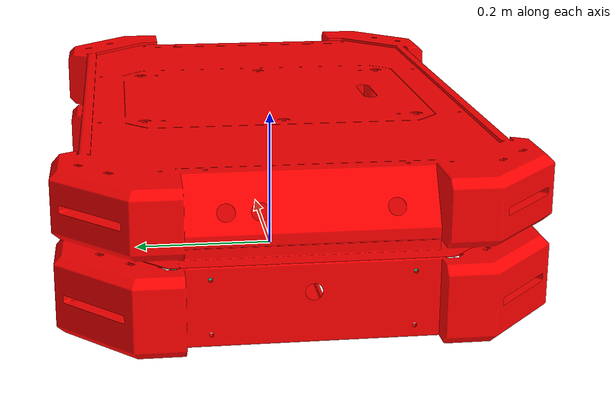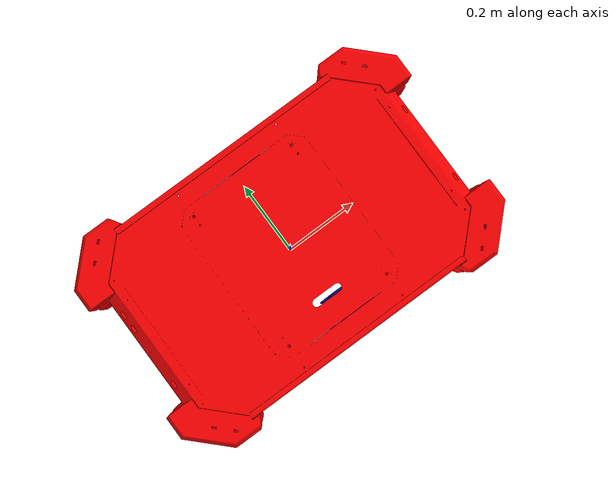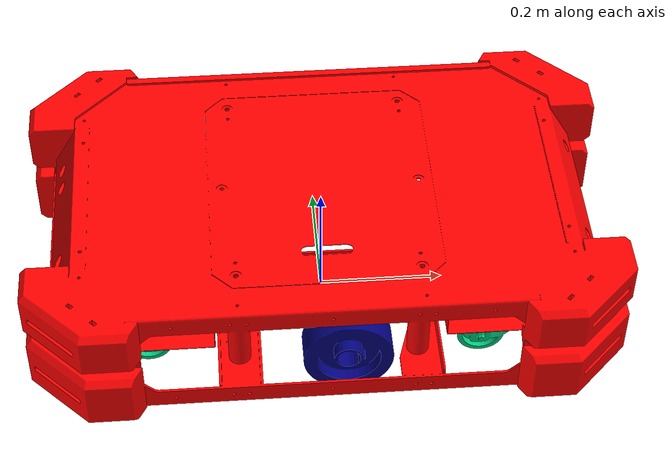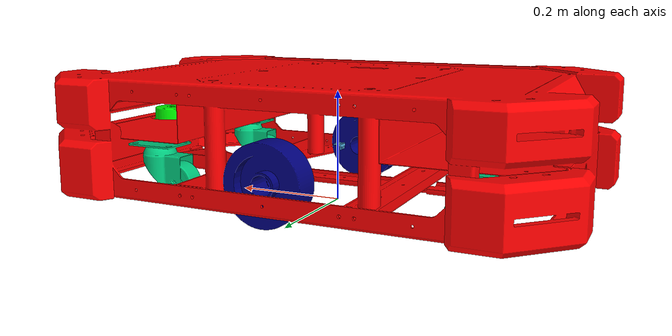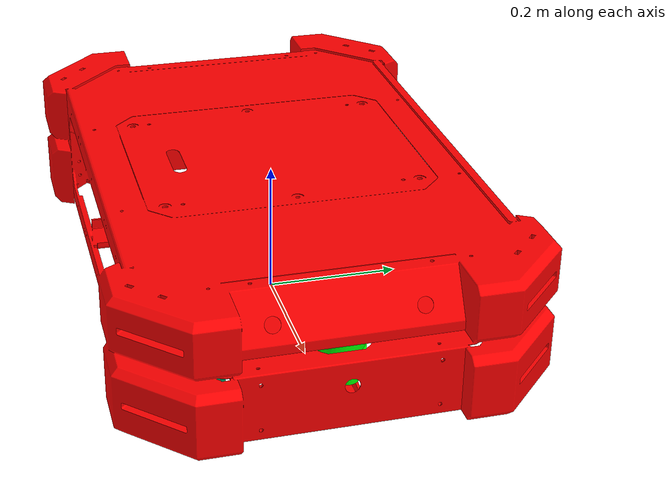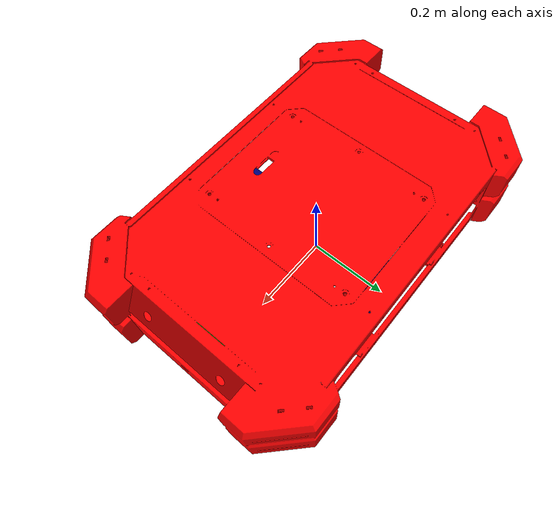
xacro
<?xml version="1.0" encoding="utf-8"?>

<robot xmlns:xacro="http://www.ros.org/wiki/xacro" name="agv">

  <!-- this argumment is used in order to load the proper version of the ROS2 control library plugin -->
  <xacro:arg name="is_ignition" default="true"/>

  <xacro:arg name="is_sim" default="true"/>
  <!-- Include Gazebo Parameters  -->
  <xacro:include filename="$(find agv_description)/urdf/agv_gazebo.xacro"/>
  <!-- Include ROS2 control parameters  -->
  <xacro:include filename="$(find agv_description)/urdf/agv_ros2_control.xacro"/>

  <link name="base_footprint"/>

  <link
    name="base_link">
    <inertial>
      <origin
        xyz="-0.000475345127634696 4.00828473441361E-05 0.103204956144496"
        rpy="0 0 0" />
      <mass
        value="33.6049622187982" />
      <inertia
        ixx="0.444197284873535"
        ixy="4.75259835208252E-05"
        ixz="-0.000648064535897803"
        iyy="0.599152254181184"
        iyz="-1.22590959041329E-06"
        izz="0.933124525051267" />
    </inertial>
    <visual>
      <origin
        xyz="0 0 0"
        rpy="0 0 0" />
      <geometry>
        <mesh
          filename="package://agv_description/meshes/base_link.STL" />
      </geometry>
      <material
        name="">
        <color
          rgba="1.0 0.0 0.0 1.0" />
      </material>
    </visual>
    <collision>
      <origin
        xyz="0 0 0"
        rpy="0 0 0" />
      <geometry>
        <mesh
          filename="package://agv_description/meshes/base_link.STL" />
      </geometry>
    </collision>
  </link>

  <joint name="base_joint" type="fixed">
    <origin xyz="0.0 0.0 0.035" rpy="0.0 0.0 0.0"/>
    <parent link="base_footprint"/>
    <child link="base_link"/>
  </joint>

  <link
    name="Banh_xe_chu_dong_1_Link">
    <inertial>
      <origin
        xyz="-0.00040649 -0.012996 -0.00010088"
        rpy="0 0 0" />
      <mass
        value="0.59968" />
      <inertia
        ixx="0.0010627"
        ixy="2.9209E-05"
        ixz="3.2604E-07"
        iyy="0.0016723"
        iyz="1.0421E-07"
        izz="0.0010619" />
    </inertial>
    <visual>
      <origin
        xyz="0 0 0"
        rpy="0 0 0" />
      <geometry>
        <mesh
          filename="package://agv_description/meshes/Banh_xe_chu_dong_1_Link.STL" />
      </geometry>
      <material
        name="">
        <color
          rgba="0.0 0.0 0.5 1" />
      </material>
    </visual>
    <collision>
      <origin
        xyz="0 0 0"
        rpy="0 0 0" />
      <geometry>
        <sphere radius="0.07"/>
      </geometry>
    </collision>
  </link>
  <joint
    name="Banh_xe_chu_dong_1_joint"
    type="continuous">
    <origin
      xyz="0.027274 0.20708 0.036271"
      rpy="0 0 0.048199" />
    <parent
      link="base_link" />
    <child
      link="Banh_xe_chu_dong_1_Link" />
    <axis
      xyz="0.04818 0.99884 0" />
  </joint>
  <link
    name="Banh_xe_chu_dong_2_Link">
    <inertial>
      <origin
        xyz="0.00084627 0.012975 -0.00010088"
        rpy="0 0 0" />
      <mass
        value="0.59968" />
      <inertia
        ixx="0.0010628"
        ixy="2.9729E-05"
        ixz="3.145E-07"
        iyy="0.0016722"
        iyz="-1.3511E-07"
        izz="0.0010619" />
    </inertial>
    <visual>
      <origin
        xyz="0 0 0"
        rpy="0 0 0" />
      <geometry>
        <mesh
          filename="package://agv_description/meshes/Banh_xe_chu_dong_2_Link.STL" />
      </geometry>
      <material
        name="">
        <color
          rgba="0.0 0.0 0.5 1" />
      </material>
    </visual>
    <collision>
      <origin
        xyz="0 0 0"
        rpy="0 0 0" />
      <geometry>
        <sphere radius="0.07"/>
      </geometry>
    </collision>
  </link>
  <joint
    name="Banh_xe_chu_dong_2_joint"
    type="continuous">
    <origin
      xyz="0.027274 -0.207 0.036271"
      rpy="0 0 0.048199" />
    <parent
      link="base_link" />
    <child
      link="Banh_xe_chu_dong_2_Link" />
    <axis
      xyz="0.04818 0.99884 0" />
  </joint>
  <link
    name="Caster_1_Link">
    <inertial>
      <origin
        xyz="0.00894253252516353 -0.0044186523091454 0.0151314240311655"
        rpy="0 0 0" />
      <mass
        value="0.11911534751356" />
      <inertia
        ixx="5.83199182256829E-05"
        ixy="2.16816499755623E-06"
        ixz="-2.19875346476464E-06"
        iyy="9.55937405528466E-05"
        iyz="1.30943678786507E-07"
        izz="7.34987727861473E-05" />
    </inertial>
    <visual>
      <origin
        xyz="0 0 0"
        rpy="0 0 0" />
      <geometry>
        <mesh
          filename="package://agv_description/meshes/Caster_1_Link.STL" />
      </geometry>
      <material
        name="">
        <color
          rgba="0.0 0.8 0.5 1" />
      </material>
    </visual>
    <collision>
      <origin
        xyz="0 0 0"
        rpy="0 0 0" />
      <geometry>
        <sphere radius="0.035"/>
      </geometry>
    </collision>
  </link>
  <joint
    name="Caster_1_joint"
    type="fixed">
    <origin
      xyz="0.24378 0.15297 0.0036951"
      rpy="0 0 0.048199" />
    <parent
      link="base_link" />
    <child
      link="Caster_1_Link" />
    <axis
      xyz="0 0 0" />
  </joint>
  <link
    name="Caster_2_Link">
    <inertial>
      <origin
        xyz="0.0094195 0.0035671 0.015131"
        rpy="0 0 0" />
      <mass
        value="0.11912" />
      <inertia
        ixx="5.832E-05"
        ixy="2.1682E-06"
        ixz="-2.1988E-06"
        iyy="9.5594E-05"
        iyz="1.3094E-07"
        izz="7.3499E-05" />
    </inertial>
    <visual>
      <origin
        xyz="0 0 0"
        rpy="0 0 0" />
      <geometry>
        <mesh
          filename="package://agv_description/meshes/Caster_2_Link.STL" />
      </geometry>
      <material
        name="">
        <color
          rgba="0.0 0.8 0.5 1" />
      </material>
    </visual>
    <collision>
      <origin
        xyz="0 0 0"
        rpy="0 0 0" />
      <geometry>
        <sphere radius="0.035"/>
      </geometry>
    </collision>
  </link>
  <joint
    name="Caster_2_joint"
    type="fixed">
    <origin
      xyz="0.24352 -0.15257 0.0036951"
      rpy="0 0 0.048199" />
    <parent
      link="base_link" />
    <child
      link="Caster_2_Link" />
    <axis
      xyz="0 0 0" />
  </joint>
  <link
    name="Caster_3_Link">
    <inertial>
      <origin
        xyz="-0.0094175 -0.0035725 0.015131"
        rpy="0 0 0" />
      <mass
        value="0.11912" />
      <inertia
        ixx="5.8317E-05"
        ixy="2.1469E-06"
        ixz="2.1988E-06"
        iyy="9.5596E-05"
        iyz="-1.2969E-07"
        izz="7.3499E-05" />
    </inertial>
    <visual>
      <origin
        xyz="0 0 0"
        rpy="0 0 0" />
      <geometry>
        <mesh
          filename="package://agv_description/meshes/Caster_3_Link.STL" />
      </geometry>
      <material
        name="">
        <color
          rgba="0.0 0.8 0.5 1" />
      </material>
    </visual>
    <collision>
      <origin
        xyz="0 0 0"
        rpy="0 0 0" />
      <geometry>
        <sphere radius="0.035"/>
      </geometry>
    </collision>
  </link>
  <joint
    name="Caster_3_joint"
    type="fixed">
    <origin
      xyz="-0.28362 0.13565 0.0036951"
      rpy="0 0 0.048199" />
    <parent
      link="base_link" />
    <child
      link="Caster_3_Link" />
    <axis
      xyz="0 0 0" />
  </joint>
  <link
    name="Caster_4_Link">
    <inertial>
      <origin
        xyz="-0.0090299 0.0044623 0.015131"
        rpy="0 0 0" />
      <mass
        value="0.11912" />
      <inertia
        ixx="5.8251E-05"
        ixy="1.4632E-06"
        ixz="2.2011E-06"
        iyy="9.5662E-05"
        iyz="-8.18E-08"
        izz="7.3499E-05" />
    </inertial>
    <visual>
      <origin
        xyz="0 0 0"
        rpy="0 0 0" />
      <geometry>
        <mesh
          filename="package://agv_description/meshes/Caster_4_Link.STL" />
      </geometry>
      <material
        name="">
        <color
          rgba="0.0 0.8 0.5 1" />
      </material>
    </visual>
    <collision>
      <origin
        xyz="0 0 0"
        rpy="0 0 0" />
      <geometry>
        <sphere radius="0.035"/>
      </geometry>
    </collision>
  </link>
  <joint
    name="Caster_4_joint"
    type="fixed">
    <origin
      xyz="-0.28362 -0.13557 0.0036951"
      rpy="0 0 0.048199" />
    <parent
      link="base_link" />
    <child
      link="Caster_4_Link" />
    <axis
      xyz="0 0 0" />
  </joint>
  <link
    name="lidar_Link">
    <inertial>
      <origin
        xyz="-0.0067542 0.00041783 0.0056681"
        rpy="0 0 0" />
      <mass
        value="1.3308" />
      <inertia
        ixx="0.00061564"
        ixy="1.5842E-05"
        ixz="-0.00015791"
        iyy="0.00095997"
        iyz="1.0712E-05"
        izz="0.0010982" />
    </inertial>
    <visual>
      <origin
        xyz="0 0 0"
        rpy="0 0 0" />
      <geometry>
        <mesh
          filename="package://agv_description/meshes/lidar_Link.STL" />
      </geometry>
      <material
        name="">
        <color
          rgba="0.0 1.0 0.0 1" />
      </material>
    </visual>
    <collision>
      <origin
        xyz="0 0 0"
        rpy="0 0 0" />
      <geometry>
        <mesh
          filename="package://agv_description/meshes/lidar_Link.STL" />
      </geometry>
    </collision>
  </link>
  <joint
    name="lidar_joint"
    type="fixed">
    <origin
      xyz="0.36573 3.5329E-05 0.0869"
      rpy="0 0 3.14" />
    <parent
      link="base_link" />
    <child
      link="lidar_Link" />
    <axis
      xyz="0 0 0" />
  </joint>

  <link name="imu_link">
    <inertial>
      <origin xyz="-0.00552433659106688 0.000168210391520346 0.000514000497342681" rpy="0.0 0.0 0.0" />
        <mass value="0.000528415362211671" />
        <inertia ixx="1.4670648428261e-08" ixy="1.40015117949421e-10" ixz="-1.99633872937403e-12"
          iyy="8.596248954888e-09" iyz="7.52375112767959e-12" izz="2.30279421279312e-08" />
    </inertial>
    <visual>
      <origin xyz="0.0 0.0 0.0" rpy="0.0 0.0 0.0"/>
      <geometry>
        <mesh
          filename="package://agv_description/meshes/imu_link.STL" />
      </geometry>
    </visual>
    <collision>
      <origin xyz="0.0 0.0 0.0" rpy="0.0 0.0 0.0"/>
      <geometry>
        <mesh
          filename="package://agv_description/meshes/imu_link.STL" />
      </geometry>
    </collision>
  </link>

  <joint name="imu_joint" type="fixed">
    <origin xyz="0.0 0.0 0.07" rpy="0.0 0.0 0.0"/>
    <parent link="base_link"/>
    <child link="imu_link"/>
    <axis xyz="0 0 0"/>
  </joint>

</robot>
